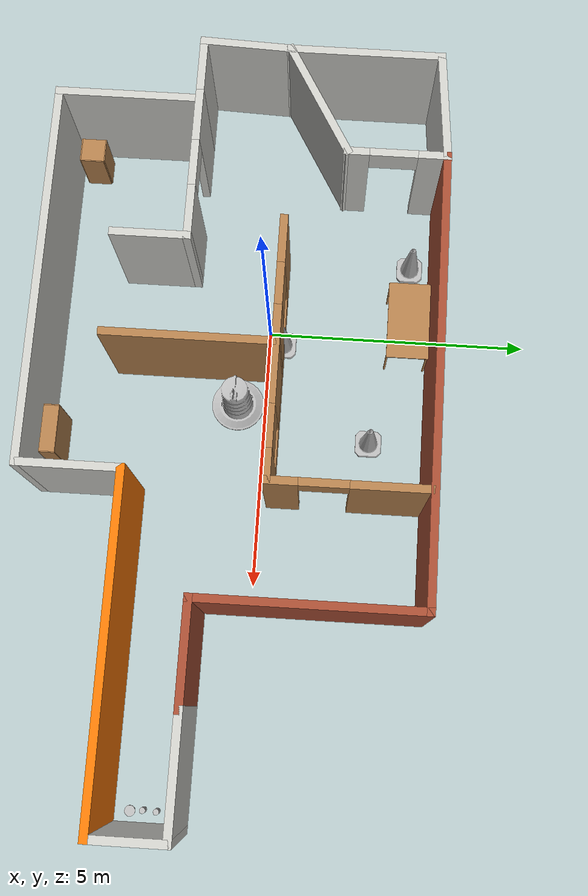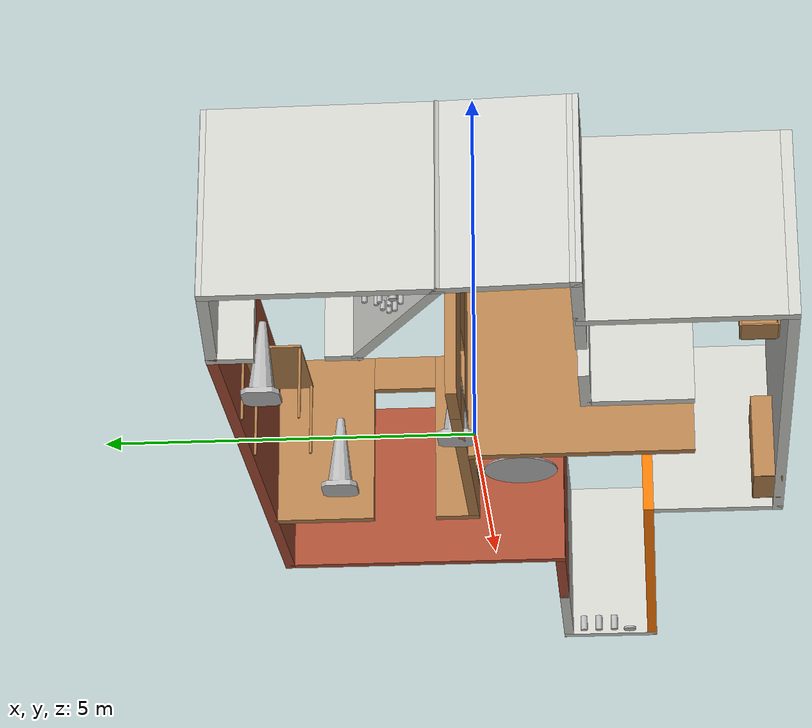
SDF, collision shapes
<?xml version='1.0'?>
<sdf version='1.7'>
  <model name='World'>
    <model name='Construction Barrel'>
      <link name='link'>
        <inertial>
          <pose>0 0 0.4 0 -0 0</pose>
          <mass>500</mass>
          <inertia>
            <ixx>51.2096</ixx>
            <iyy>51.2096</iyy>
            <izz>25</izz>
            <ixy>0</ixy>
            <ixz>0</ixz>
            <iyz>0</iyz>
          </inertia>
        </inertial>
        <collision name='collision'>
          <geometry>
            <mesh>
              <uri>model://construction_barrel/meshes/construction_barrel.dae</uri>
            </mesh>
          </geometry>
        </collision>
        <visual name='visual'>
          <geometry>
            <mesh>
              <uri>model://construction_barrel/meshes/construction_barrel.dae</uri>
            </mesh>
          </geometry>
        </visual>
      </link>
      <pose>1.4823 -0.546528 0 0 -0 0</pose>
    </model>
    <model name='Construction Cone'>
      <link name='link'>
        <collision name='collision'>
          <geometry>
            <mesh>
              <scale>10 10 10</scale>
              <uri>model://construction_cone/meshes/construction_cone.dae</uri>
            </mesh>
          </geometry>
        </collision>
        <visual name='visual'>
          <geometry>
            <mesh>
              <scale>10 10 10</scale>
              <uri>model://construction_cone/meshes/construction_cone.dae</uri>
            </mesh>
          </geometry>
        </visual>
      </link>
      <pose>2.12523 2.04096 0 0 -0 0</pose>
    </model>
    <model name='Construction Cone_0'>
      <link name='link'>
        <collision name='collision'>
          <geometry>
            <mesh>
              <scale>10 10 10</scale>
              <uri>model://construction_cone/meshes/construction_cone.dae</uri>
            </mesh>
          </geometry>
        </collision>
        <visual name='visual'>
          <geometry>
            <mesh>
              <scale>10 10 10</scale>
              <uri>model://construction_cone/meshes/construction_cone.dae</uri>
            </mesh>
          </geometry>
        </visual>
      </link>
      <pose>-1.51505 2.69302 0 0 -0 0</pose>
    </model>
    <model name='Construction Cone_1'>
      <link name='link'>
        <collision name='collision'>
          <geometry>
            <mesh>
              <scale>10 10 10</scale>
              <uri>model://construction_cone/meshes/construction_cone.dae</uri>
            </mesh>
          </geometry>
        </collision>
        <visual name='visual'>
          <geometry>
            <mesh>
              <scale>10 10 10</scale>
              <uri>model://construction_cone/meshes/construction_cone.dae</uri>
            </mesh>
          </geometry>
        </visual>
      </link>
      <pose>0.21796 0.261366 0 0 -0 0</pose>
    </model>
    <model name='World'>
      <pose>2.25001 -0.493369 0 0 -0 0</pose>
      <link name='Wall_41'>
        <collision name='Wall_41_Collision'>
          <geometry>
            <box>
              <size>1.5 0.15 2.5</size>
            </box>
          </geometry>
          <pose>0 0 1.25 0 -0 0</pose>
        </collision>
        <visual name='Wall_41_Visual'>
          <pose>0 0 1.25 0 -0 0</pose>
          <geometry>
            <box>
              <size>1.5 0.15 2.5</size>
            </box>
          </geometry>
          <material>
            <script>
              <uri>file://media/materials/scripts/gazebo.material</uri>
              <name>Gazebo/CeilingTiled</name>
            </script>
            <ambient>1 1 1 1</ambient>
          </material>
          <meta>
            <layer>0</layer>
          </meta>
        </visual>
        <pose>-3.25027 -1.70266 0 0 -0 1.5708</pose>
      </link>
      <link name='Wall_42'>
        <pose>-4.67527 -1.02766 0 0 -0 3.14159</pose>
        <visual name='Wall_42_Visual_0'>
          <pose>-0.963915 0 1.25 0 -0 0</pose>
          <geometry>
            <box>
              <size>1.07217 0.15 2.5</size>
            </box>
          </geometry>
          <material>
            <script>
              <uri>file://media/materials/scripts/gazebo.material</uri>
              <name>Gazebo/CeilingTiled</name>
            </script>
            <ambient>0.388235 0.270588 0.172549 1</ambient>
          </material>
          <meta>
            <layer>0</layer>
          </meta>
        </visual>
        <collision name='Wall_42_Collision_0'>
          <geometry>
            <box>
              <size>1.07217 0.15 2.5</size>
            </box>
          </geometry>
          <pose>-0.963915 0 1.25 0 -0 0</pose>
        </collision>
        <visual name='Wall_42_Visual_1'>
          <pose>0.986085 0 1.25 0 -0 0</pose>
          <geometry>
            <box>
              <size>1.02783 0.15 2.5</size>
            </box>
          </geometry>
          <material>
            <script>
              <uri>file://media/materials/scripts/gazebo.material</uri>
              <name>Gazebo/CeilingTiled</name>
            </script>
            <ambient>0.388235 0.270588 0.172549 1</ambient>
          </material>
          <meta>
            <layer>0</layer>
          </meta>
        </visual>
        <collision name='Wall_42_Collision_1'>
          <geometry>
            <box>
              <size>1.02783 0.15 2.5</size>
            </box>
          </geometry>
          <pose>0.986085 0 1.25 0 -0 0</pose>
        </collision>
        <visual name='Wall_42_Visual_2'>
          <pose>0.02217 0 2.25 0 -0 0</pose>
          <geometry>
            <box>
              <size>0.9 0.15 0.5</size>
            </box>
          </geometry>
          <material>
            <script>
              <uri>file://media/materials/scripts/gazebo.material</uri>
              <name>Gazebo/CeilingTiled</name>
            </script>
            <ambient>0.388235 0.270588 0.172549 1</ambient>
          </material>
          <meta>
            <layer>0</layer>
          </meta>
        </visual>
        <collision name='Wall_42_Collision_2'>
          <geometry>
            <box>
              <size>0.9 0.15 0.5</size>
            </box>
          </geometry>
          <pose>0.02217 0 2.25 0 -0 0</pose>
        </collision>
      </link>
      <link name='Wall_43'>
        <collision name='Wall_43_Collision'>
          <geometry>
            <box>
              <size>1.25 0.15 2.5</size>
            </box>
          </geometry>
          <pose>0 0 1.25 0 -0 0</pose>
        </collision>
        <visual name='Wall_43_Visual'>
          <pose>0 0 1.25 0 -0 0</pose>
          <geometry>
            <box>
              <size>1.25 0.15 2.5</size>
            </box>
          </geometry>
          <material>
            <script>
              <uri>file://media/materials/scripts/gazebo.material</uri>
              <name>Gazebo/CeilingTiled</name>
            </script>
            <ambient>1 1 1 1</ambient>
          </material>
          <meta>
            <layer>0</layer>
          </meta>
        </visual>
        <pose>-6.65027 -1.02766 0 0 -0 3.14159</pose>
      </link>
      <link name='Wall_44'>
        <collision name='Wall_44_Collision'>
          <geometry>
            <box>
              <size>1.80101 0.15 2.5</size>
            </box>
          </geometry>
          <pose>0 0 1.25 0 -0 0</pose>
        </collision>
        <visual name='Wall_44_Visual'>
          <pose>0 0 1.25 0 -0 0</pose>
          <geometry>
            <box>
              <size>1.80101 0.15 2.5</size>
            </box>
          </geometry>
          <material>
            <script>
              <uri>file://media/materials/scripts/gazebo.material</uri>
              <name>Gazebo/CeilingTiled</name>
            </script>
            <ambient>1 1 1 1</ambient>
          </material>
          <meta>
            <layer>0</layer>
          </meta>
        </visual>
        <pose>-7.16606 -0.202869 0 0 -0 1.52934</pose>
      </link>
      <link name='Wall_47'>
        <collision name='Wall_47_Collision'>
          <geometry>
            <box>
              <size>2.5 0.15 2.5</size>
            </box>
          </geometry>
          <pose>0 0 1.25 0 -0 0</pose>
        </collision>
        <visual name='Wall_47_Visual'>
          <pose>0 0 1.25 0 -0 0</pose>
          <geometry>
            <box>
              <size>2.5 0.15 2.5</size>
            </box>
          </geometry>
          <material>
            <script>
              <uri>file://media/materials/scripts/gazebo.material</uri>
              <name>Gazebo/CeilingTiled</name>
            </script>
            <ambient>1 1 1 1</ambient>
          </material>
          <meta>
            <layer>0</layer>
          </meta>
        </visual>
        <pose>-6.11427 1.20942 0 0 -0 0.523599</pose>
      </link>
      <link name='Wall_50'>
        <pose>-5.09669 2.72193 0 0 -0 1.5708</pose>
        <visual name='Wall_50_Visual_0'>
          <pose>-0.758464 0 1.25 0 -0 0</pose>
          <geometry>
            <box>
              <size>0.483072 0.15 2.5</size>
            </box>
          </geometry>
          <material>
            <script>
              <uri>file://media/materials/scripts/gazebo.material</uri>
              <name>Gazebo/CeilingTiled</name>
            </script>
            <ambient>1 1 1 1</ambient>
          </material>
          <meta>
            <layer>0</layer>
          </meta>
        </visual>
        <collision name='Wall_50_Collision_0'>
          <geometry>
            <box>
              <size>0.483072 0.15 2.5</size>
            </box>
          </geometry>
          <pose>-0.758464 0 1.25 0 -0 0</pose>
        </collision>
        <visual name='Wall_50_Visual_1'>
          <pose>0.691536 0 1.25 0 -0 0</pose>
          <geometry>
            <box>
              <size>0.616928 0.15 2.5</size>
            </box>
          </geometry>
          <material>
            <script>
              <uri>file://media/materials/scripts/gazebo.material</uri>
              <name>Gazebo/CeilingTiled</name>
            </script>
            <ambient>1 1 1 1</ambient>
          </material>
          <meta>
            <layer>0</layer>
          </meta>
        </visual>
        <collision name='Wall_50_Collision_1'>
          <geometry>
            <box>
              <size>0.616928 0.15 2.5</size>
            </box>
          </geometry>
          <pose>0.691536 0 1.25 0 -0 0</pose>
        </collision>
        <visual name='Wall_50_Visual_2'>
          <pose>-0.066928 0 2.25 0 -0 0</pose>
          <geometry>
            <box>
              <size>0.9 0.15 0.5</size>
            </box>
          </geometry>
          <material>
            <script>
              <uri>file://media/materials/scripts/gazebo.material</uri>
              <name>Gazebo/CeilingTiled</name>
            </script>
            <ambient>1 1 1 1</ambient>
          </material>
          <meta>
            <layer>0</layer>
          </meta>
        </visual>
        <collision name='Wall_50_Collision_2'>
          <geometry>
            <box>
              <size>0.9 0.15 0.5</size>
            </box>
          </geometry>
          <pose>-0.066928 0 2.25 0 -0 0</pose>
        </collision>
      </link>
      <link name='Wall_51'>
        <collision name='Wall_51_Collision'>
          <geometry>
            <box>
              <size>8.5 0.15 2.5</size>
            </box>
          </geometry>
          <pose>0 0 1.25 0 -0 0</pose>
        </collision>
        <visual name='Wall_51_Visual'>
          <pose>0 0 1.25 0 -0 0</pose>
          <geometry>
            <box>
              <size>8.5 0.15 2.5</size>
            </box>
          </geometry>
          <material>
            <script>
              <uri>file://media/materials/scripts/gazebo.material</uri>
              <name>Gazebo/Bricks</name>
            </script>
            <ambient>1 1 1 1</ambient>
          </material>
          <meta>
            <layer>0</layer>
          </meta>
        </visual>
        <pose>-0.921689 3.64692 0 0 -0 0</pose>
      </link>
      <link name='Wall_52'>
        <collision name='Wall_52_Collision'>
          <geometry>
            <box>
              <size>4.25 0.15 2.5</size>
            </box>
          </geometry>
          <pose>0 0 1.25 0 -0 0</pose>
        </collision>
        <visual name='Wall_52_Visual'>
          <pose>0 0 1.25 0 -0 0</pose>
          <geometry>
            <box>
              <size>4.25 0.15 2.5</size>
            </box>
          </geometry>
          <material>
            <script>
              <uri>file://media/materials/scripts/gazebo.material</uri>
              <name>Gazebo/Bricks</name>
            </script>
            <ambient>1 1 1 1</ambient>
          </material>
          <meta>
            <layer>0</layer>
          </meta>
        </visual>
        <pose>3.25331 1.59692 0 0 -0 -1.5708</pose>
      </link>
      <link name='Wall_53'>
        <collision name='Wall_53_Collision'>
          <geometry>
            <box>
              <size>2 0.15 2.5</size>
            </box>
          </geometry>
          <pose>0 0 1.25 0 -0 0</pose>
        </collision>
        <visual name='Wall_53_Visual'>
          <pose>0 0 1.25 0 -0 0</pose>
          <geometry>
            <box>
              <size>2 0.15 2.5</size>
            </box>
          </geometry>
          <material>
            <script>
              <uri>file://media/materials/scripts/gazebo.material</uri>
              <name>Gazebo/Bricks</name>
            </script>
            <ambient>0.760784 0.662745 0.627451 1</ambient>
          </material>
          <meta>
            <layer>0</layer>
          </meta>
        </visual>
        <pose>4.17831 -0.453075 0 0 -0 0</pose>
      </link>
      <link name='Wall_54'>
        <collision name='Wall_54_Collision'>
          <geometry>
            <box>
              <size>2.25 0.15 2.5</size>
            </box>
          </geometry>
          <pose>0 0 1.25 0 -0 0</pose>
        </collision>
        <visual name='Wall_54_Visual'>
          <pose>0 0 1.25 0 -0 0</pose>
          <geometry>
            <box>
              <size>2.25 0.15 2.5</size>
            </box>
          </geometry>
          <material>
            <script>
              <uri>file://media/materials/scripts/gazebo.material</uri>
              <name>Gazebo/CeilingTiled</name>
            </script>
            <ambient>0.435294 0.796078 0.67451 1</ambient>
          </material>
          <meta>
            <layer>0</layer>
          </meta>
        </visual>
        <pose>6.15331 -0.453075 0 0 -0 0</pose>
      </link>
      <link name='Wall_55'>
        <collision name='Wall_55_Collision'>
          <geometry>
            <box>
              <size>1.5 0.15 2.5</size>
            </box>
          </geometry>
          <pose>0 0 1.25 0 -0 0</pose>
        </collision>
        <visual name='Wall_55_Visual'>
          <pose>0 0 1.25 0 -0 0</pose>
          <geometry>
            <box>
              <size>1.5 0.15 2.5</size>
            </box>
          </geometry>
          <material>
            <script>
              <uri>file://media/materials/scripts/gazebo.material</uri>
              <name>Gazebo/CeilingTiled</name>
            </script>
            <ambient>1 1 1 1</ambient>
          </material>
          <meta>
            <layer>0</layer>
          </meta>
        </visual>
        <pose>7.20331 -1.12807 0 0 -0 -1.5708</pose>
      </link>
      <link name='Wall_57'>
        <collision name='Wall_57_Collision'>
          <geometry>
            <box>
              <size>6.25 0.15 2.5</size>
            </box>
          </geometry>
          <pose>0 0 1.25 0 -0 0</pose>
        </collision>
        <visual name='Wall_57_Visual'>
          <pose>0 0 1.25 0 -0 0</pose>
          <geometry>
            <box>
              <size>6.25 0.15 2.5</size>
            </box>
          </geometry>
          <material>
            <script>
              <uri>file://media/materials/scripts/gazebo.material</uri>
              <name>Gazebo/Grey</name>
            </script>
            <ambient>0.996078 0.47451 0.0196078 1</ambient>
          </material>
          <meta>
            <layer>0</layer>
          </meta>
        </visual>
        <pose>4.15331 -1.80307 0 0 -0 3.14159</pose>
      </link>
      <link name='Wall_58'>
        <collision name='Wall_58_Collision'>
          <geometry>
            <box>
              <size>2 0.15 2.5</size>
            </box>
          </geometry>
          <pose>0 0 1.25 0 -0 0</pose>
        </collision>
        <visual name='Wall_58_Visual'>
          <pose>0 0 1.25 0 -0 0</pose>
          <geometry>
            <box>
              <size>2 0.15 2.5</size>
            </box>
          </geometry>
          <material>
            <script>
              <uri>file://media/materials/scripts/gazebo.material</uri>
              <name>Gazebo/CeilingTiled</name>
            </script>
            <ambient>1 1 1 1</ambient>
          </material>
          <meta>
            <layer>0</layer>
          </meta>
        </visual>
        <pose>1.10331 -2.72808 0 0 -0 -1.5708</pose>
      </link>
      <link name='Wall_59'>
        <collision name='Wall_59_Collision'>
          <geometry>
            <box>
              <size>7.25 0.15 2.5</size>
            </box>
          </geometry>
          <pose>0 0 1.25 0 -0 0</pose>
        </collision>
        <visual name='Wall_59_Visual'>
          <pose>0 0 1.25 0 -0 0</pose>
          <geometry>
            <box>
              <size>7.25 0.15 2.5</size>
            </box>
          </geometry>
          <material>
            <script>
              <uri>file://media/materials/scripts/gazebo.material</uri>
              <name>Gazebo/CeilingTiled</name>
            </script>
            <ambient>1 1 1 1</ambient>
          </material>
          <meta>
            <layer>0</layer>
          </meta>
        </visual>
        <pose>-2.44669 -3.65307 0 0 -0 3.14159</pose>
      </link>
      <link name='Wall_60'>
        <collision name='Wall_60_Collision'>
          <geometry>
            <box>
              <size>2.75 0.15 2.5</size>
            </box>
          </geometry>
          <pose>0 0 1.25 0 -0 0</pose>
        </collision>
        <visual name='Wall_60_Visual'>
          <pose>0 0 1.25 0 -0 0</pose>
          <geometry>
            <box>
              <size>2.75 0.15 2.5</size>
            </box>
          </geometry>
          <material>
            <script>
              <uri>file://media/materials/scripts/gazebo.material</uri>
              <name>Gazebo/CeilingTiled</name>
            </script>
            <ambient>1 1 1 1</ambient>
          </material>
          <meta>
            <layer>0</layer>
          </meta>
        </visual>
        <pose>-5.99669 -2.35308 0 0 -0 1.5708</pose>
      </link>
      <link name='Wall_62'>
        <pose>-1.26157 0.713054 0 0 -0 -5.3e-05</pose>
        <visual name='Wall_62_Visual_0'>
          <pose>-2.03741 0 1.25 0 -0 0</pose>
          <geometry>
            <box>
              <size>0.925179 0.15 2.5</size>
            </box>
          </geometry>
          <material>
            <script>
              <uri>file://media/materials/scripts/gazebo.material</uri>
              <name>Gazebo/Wood</name>
            </script>
            <ambient>0.647059 0.113725 0.176471 1</ambient>
          </material>
          <meta>
            <layer>0</layer>
          </meta>
        </visual>
        <collision name='Wall_62_Collision_0'>
          <geometry>
            <box>
              <size>0.925179 0.15 2.5</size>
            </box>
          </geometry>
          <pose>-2.03741 0 1.25 0 -0 0</pose>
        </collision>
        <visual name='Wall_62_Visual_1'>
          <pose>0.462589 0 0.25 0 -0 0</pose>
          <geometry>
            <box>
              <size>4.07482 0.15 0.5</size>
            </box>
          </geometry>
          <material>
            <script>
              <uri>file://media/materials/scripts/gazebo.material</uri>
              <name>Gazebo/Wood</name>
            </script>
            <ambient>0.647059 0.113725 0.176471 1</ambient>
          </material>
          <meta>
            <layer>0</layer>
          </meta>
        </visual>
        <collision name='Wall_62_Collision_1'>
          <geometry>
            <box>
              <size>4.07482 0.15 0.5</size>
            </box>
          </geometry>
          <pose>0.462589 0 0.25 0 -0 0</pose>
        </collision>
        <visual name='Wall_62_Visual_2'>
          <pose>0.141923 0 1.5 0 -0 0</pose>
          <geometry>
            <box>
              <size>1.83349 0.15 2</size>
            </box>
          </geometry>
          <material>
            <script>
              <uri>file://media/materials/scripts/gazebo.material</uri>
              <name>Gazebo/Wood</name>
            </script>
            <ambient>0.647059 0.113725 0.176471 1</ambient>
          </material>
          <meta>
            <layer>0</layer>
          </meta>
        </visual>
        <collision name='Wall_62_Collision_2'>
          <geometry>
            <box>
              <size>1.83349 0.15 2</size>
            </box>
          </geometry>
          <pose>0.141923 0 1.5 0 -0 0</pose>
        </collision>
        <visual name='Wall_62_Visual_3'>
          <pose>2.17933 0 1.5 0 -0 0</pose>
          <geometry>
            <box>
              <size>0.641333 0.15 2</size>
            </box>
          </geometry>
          <material>
            <script>
              <uri>file://media/materials/scripts/gazebo.material</uri>
              <name>Gazebo/Wood</name>
            </script>
            <ambient>0.647059 0.113725 0.176471 1</ambient>
          </material>
          <meta>
            <layer>0</layer>
          </meta>
        </visual>
        <collision name='Wall_62_Collision_3'>
          <geometry>
            <box>
              <size>0.641333 0.15 2</size>
            </box>
          </geometry>
          <pose>2.17933 0 1.5 0 -0 0</pose>
        </collision>
        <visual name='Wall_62_Visual_4'>
          <pose>-1.17482 0 1.9 0 -0 0</pose>
          <geometry>
            <box>
              <size>0.8 0.15 1.2</size>
            </box>
          </geometry>
          <material>
            <script>
              <uri>file://media/materials/scripts/gazebo.material</uri>
              <name>Gazebo/Wood</name>
            </script>
            <ambient>0.647059 0.113725 0.176471 1</ambient>
          </material>
          <meta>
            <layer>0</layer>
          </meta>
        </visual>
        <collision name='Wall_62_Collision_4'>
          <geometry>
            <box>
              <size>0.8 0.15 1.2</size>
            </box>
          </geometry>
          <pose>-1.17482 0 1.9 0 -0 0</pose>
        </collision>
        <visual name='Wall_62_Visual_5'>
          <pose>1.45867 0 1.9 0 -0 0</pose>
          <geometry>
            <box>
              <size>0.8 0.15 1.2</size>
            </box>
          </geometry>
          <material>
            <script>
              <uri>file://media/materials/scripts/gazebo.material</uri>
              <name>Gazebo/Wood</name>
            </script>
            <ambient>0.647059 0.113725 0.176471 1</ambient>
          </material>
          <meta>
            <layer>0</layer>
          </meta>
        </visual>
        <collision name='Wall_62_Collision_5'>
          <geometry>
            <box>
              <size>0.8 0.15 1.2</size>
            </box>
          </geometry>
          <pose>1.45867 0 1.9 0 -0 0</pose>
        </collision>
      </link>
      <link name='Wall_64'>
        <collision name='Wall_64_Collision'>
          <geometry>
            <box>
              <size>3.25 0.15 2.5</size>
            </box>
          </geometry>
          <pose>0 0 1.25 0 -0 0</pose>
        </collision>
        <visual name='Wall_64_Visual'>
          <pose>0 0 1.25 0 -0 0</pose>
          <geometry>
            <box>
              <size>3.25 0.15 2.5</size>
            </box>
          </geometry>
          <material>
            <script>
              <uri>file://media/materials/scripts/gazebo.material</uri>
              <name>Gazebo/Wood</name>
            </script>
            <ambient>1 1 1 1</ambient>
          </material>
          <meta>
            <layer>0</layer>
          </meta>
        </visual>
        <pose>-1.34581 -0.836817 0 0 -0 -1.5708</pose>
      </link>
      <link name='Wall_66'>
        <collision name='Wall_66_Collision'>
          <geometry>
            <box>
              <size>3 0.15 2.5</size>
            </box>
          </geometry>
          <pose>0 0 1.25 0 -0 0</pose>
        </collision>
        <visual name='Wall_66_Visual'>
          <pose>0 0 1.25 0 -0 0</pose>
          <geometry>
            <box>
              <size>3 0.15 2.5</size>
            </box>
          </geometry>
          <material>
            <script>
              <uri>file://media/materials/scripts/gazebo.material</uri>
              <name>Gazebo/CeilingTiled</name>
            </script>
            <ambient>1 1 1 1</ambient>
          </material>
          <meta>
            <layer>0</layer>
          </meta>
        </visual>
        <pose>-7.13185 2.04692 0 0 -0 1.5708</pose>
      </link>
      <link name='Wall_67'>
        <collision name='Wall_67_Collision'>
          <geometry>
            <box>
              <size>2.19267 0.15 2.5</size>
            </box>
          </geometry>
          <pose>0 0 1.25 0 -0 0</pose>
        </collision>
        <visual name='Wall_67_Visual'>
          <pose>0 0 1.25 0 -0 0</pose>
          <geometry>
            <box>
              <size>2.19267 0.15 2.5</size>
            </box>
          </geometry>
          <material>
            <script>
              <uri>file://media/materials/scripts/gazebo.material</uri>
              <name>Gazebo/CeilingTiled</name>
            </script>
            <ambient>1 1 1 1</ambient>
          </material>
          <meta>
            <layer>0</layer>
          </meta>
        </visual>
        <pose>-6.11427 3.55943 0 0 -0 0.085777</pose>
      </link>
      <link name='Wall_69'>
        <pose>1.1635 2.13793 0 0 -0 1.5708</pose>
        <visual name='Wall_69_Visual_0'>
          <pose>-1.18427 0 1.25 0 -0 0</pose>
          <geometry>
            <box>
              <size>0.631449 0.15 2.5</size>
            </box>
          </geometry>
          <material>
            <script>
              <uri>file://media/materials/scripts/gazebo.material</uri>
              <name>Gazebo/Wood</name>
            </script>
            <ambient>1 1 1 1</ambient>
          </material>
          <meta>
            <layer>0</layer>
          </meta>
        </visual>
        <collision name='Wall_69_Collision_0'>
          <geometry>
            <box>
              <size>0.631449 0.15 2.5</size>
            </box>
          </geometry>
          <pose>-1.18427 0 1.25 0 -0 0</pose>
        </collision>
        <visual name='Wall_69_Visual_1'>
          <pose>0.765725 0 1.25 0 -0 0</pose>
          <geometry>
            <box>
              <size>1.46855 0.15 2.5</size>
            </box>
          </geometry>
          <material>
            <script>
              <uri>file://media/materials/scripts/gazebo.material</uri>
              <name>Gazebo/Wood</name>
            </script>
            <ambient>1 1 1 1</ambient>
          </material>
          <meta>
            <layer>0</layer>
          </meta>
        </visual>
        <collision name='Wall_69_Collision_1'>
          <geometry>
            <box>
              <size>1.46855 0.15 2.5</size>
            </box>
          </geometry>
          <pose>0.765725 0 1.25 0 -0 0</pose>
        </collision>
        <visual name='Wall_69_Visual_2'>
          <pose>-0.418551 0 2.25 0 -0 0</pose>
          <geometry>
            <box>
              <size>0.9 0.15 0.5</size>
            </box>
          </geometry>
          <material>
            <script>
              <uri>file://media/materials/scripts/gazebo.material</uri>
              <name>Gazebo/Wood</name>
            </script>
            <ambient>1 1 1 1</ambient>
          </material>
          <meta>
            <layer>0</layer>
          </meta>
        </visual>
        <collision name='Wall_69_Collision_2'>
          <geometry>
            <box>
              <size>0.9 0.15 0.5</size>
            </box>
          </geometry>
          <pose>-0.418551 0 2.25 0 -0 0</pose>
        </collision>
      </link>
      <static>1</static>
    </model>
    <model name='beer'>
      <link name='link'>
        <pose>0 0 0.115 0 -0 0</pose>
        <inertial>
          <mass>0.39</mass>
          <inertia>
            <ixx>0.00058</ixx>
            <ixy>0</ixy>
            <ixz>0</ixz>
            <iyy>0.00058</iyy>
            <iyz>0</iyz>
            <izz>0.00019</izz>
          </inertia>
        </inertial>
        <collision name='collision'>
          <geometry>
            <cylinder>
              <radius>0.055</radius>
              <length>0.23</length>
            </cylinder>
          </geometry>
        </collision>
        <visual name='visual'>
          <geometry>
            <cylinder>
              <radius>0.055</radius>
              <length>0.23</length>
            </cylinder>
          </geometry>
          <material>
            <script>
              <uri>model://beer/materials/scripts</uri>
              <uri>model://beer/materials/textures</uri>
              <name>Beer/Diffuse</name>
            </script>
          </material>
        </visual>
      </link>
      <pose>9.15485 -1.68905 0 0 -0 0</pose>
    </model>
    <model name='beer_0'>
      <link name='link'>
        <pose>0 0 0.115 0 -0 0</pose>
        <inertial>
          <mass>0.39</mass>
          <inertia>
            <ixx>0.00058</ixx>
            <ixy>0</ixy>
            <ixz>0</ixz>
            <iyy>0.00058</iyy>
            <iyz>0</iyz>
            <izz>0.00019</izz>
          </inertia>
        </inertial>
        <collision name='collision'>
          <geometry>
            <cylinder>
              <radius>0.055</radius>
              <length>0.23</length>
            </cylinder>
          </geometry>
        </collision>
        <visual name='visual'>
          <geometry>
            <cylinder>
              <radius>0.055</radius>
              <length>0.23</length>
            </cylinder>
          </geometry>
          <material>
            <script>
              <uri>model://beer/materials/scripts</uri>
              <uri>model://beer/materials/textures</uri>
              <name>Beer/Diffuse</name>
            </script>
          </material>
        </visual>
      </link>
      <pose>9.16568 -1.43968 0 0 -0 0</pose>
    </model>
    <model name='beer_1'>
      <link name='link'>
        <pose>0 0 0.115 0 -0 0</pose>
        <inertial>
          <mass>0.39</mass>
          <inertia>
            <ixx>0.00058</ixx>
            <ixy>0</ixy>
            <ixz>0</ixz>
            <iyy>0.00058</iyy>
            <iyz>0</iyz>
            <izz>0.00019</izz>
          </inertia>
        </inertial>
        <collision name='collision'>
          <geometry>
            <cylinder>
              <radius>0.055</radius>
              <length>0.23</length>
            </cylinder>
          </geometry>
        </collision>
        <visual name='visual'>
          <geometry>
            <cylinder>
              <radius>0.055</radius>
              <length>0.23</length>
            </cylinder>
          </geometry>
          <material>
            <script>
              <uri>model://beer/materials/scripts</uri>
              <uri>model://beer/materials/textures</uri>
              <name>Beer/Diffuse</name>
            </script>
          </material>
        </visual>
      </link>
      <pose>9.17128 -1.19867 0 0 -0 0</pose>
    </model>
    <model name='beer_2'>
      <link name='link'>
        <pose>0 0 0.115 0 -0 0</pose>
        <inertial>
          <mass>0.39</mass>
          <inertia>
            <ixx>0.00058</ixx>
            <ixy>0</ixy>
            <ixz>0</ixz>
            <iyy>0.00058</iyy>
            <iyz>0</iyz>
            <izz>0.00019</izz>
          </inertia>
        </inertial>
        <collision name='collision'>
          <geometry>
            <cylinder>
              <radius>0.055</radius>
              <length>0.23</length>
            </cylinder>
          </geometry>
        </collision>
        <visual name='visual'>
          <geometry>
            <cylinder>
              <radius>0.055</radius>
              <length>0.23</length>
            </cylinder>
          </geometry>
          <material>
            <script>
              <uri>model://beer/materials/scripts</uri>
              <uri>model://beer/materials/textures</uri>
              <name>Beer/Diffuse</name>
            </script>
          </material>
        </visual>
      </link>
      <pose>-4.66971 0.690219 0 0 -0 0</pose>
    </model>
    <model name='bookshelf'>
      <static>1</static>
      <link name='link'>
        <inertial>
          <mass>1</mass>
        </inertial>
        <collision name='back'>
          <pose>0 0.005 0.6 0 -0 0</pose>
          <geometry>
            <box>
              <size>0.9 0.01 1.2</size>
            </box>
          </geometry>
        </collision>
        <visual name='visual1'>
          <pose>0 0.005 0.6 0 -0 0</pose>
          <geometry>
            <box>
              <size>0.9 0.01 1.2</size>
            </box>
          </geometry>
          <material>
            <script>
              <uri>file://media/materials/scripts/gazebo.material</uri>
              <name>Gazebo/Wood</name>
            </script>
          </material>
        </visual>
        <collision name='left_side'>
          <pose>0.45 -0.195 0.6 0 -0 0</pose>
          <geometry>
            <box>
              <size>0.02 0.4 1.2</size>
            </box>
          </geometry>
        </collision>
        <visual name='visual2'>
          <pose>0.45 -0.195 0.6 0 -0 0</pose>
          <geometry>
            <box>
              <size>0.02 0.4 1.2</size>
            </box>
          </geometry>
          <material>
            <script>
              <uri>file://media/materials/scripts/gazebo.material</uri>
              <name>Gazebo/Wood</name>
            </script>
          </material>
        </visual>
        <collision name='right_side'>
          <pose>-0.45 -0.195 0.6 0 -0 0</pose>
          <geometry>
            <box>
              <size>0.02 0.4 1.2</size>
            </box>
          </geometry>
        </collision>
        <visual name='visual3'>
          <pose>-0.45 -0.195 0.6 0 -0 0</pose>
          <geometry>
            <box>
              <size>0.02 0.4 1.2</size>
            </box>
          </geometry>
          <material>
            <script>
              <uri>file://media/materials/scripts/gazebo.material</uri>
              <name>Gazebo/Wood</name>
            </script>
          </material>
        </visual>
        <collision name='bottom'>
          <pose>0 -0.195 0.03 0 -0 0</pose>
          <geometry>
            <box>
              <size>0.88 0.4 0.06</size>
            </box>
          </geometry>
        </collision>
        <visual name='visual4'>
          <pose>0 -0.195 0.03 0 -0 0</pose>
          <geometry>
            <box>
              <size>0.88 0.4 0.06</size>
            </box>
          </geometry>
          <material>
            <script>
              <uri>file://media/materials/scripts/gazebo.material</uri>
              <name>Gazebo/Wood</name>
            </script>
          </material>
        </visual>
        <collision name='top'>
          <pose>0 -0.195 1.19 0 -0 0</pose>
          <geometry>
            <box>
              <size>0.88 0.4 0.02</size>
            </box>
          </geometry>
        </collision>
        <visual name='visual5'>
          <pose>0 -0.195 1.19 0 -0 0</pose>
          <geometry>
            <box>
              <size>0.88 0.4 0.02</size>
            </box>
          </geometry>
          <material>
            <script>
              <uri>file://media/materials/scripts/gazebo.material</uri>
              <name>Gazebo/Wood</name>
            </script>
          </material>
        </visual>
        <collision name='low_shelf'>
          <pose>0 -0.195 0.43 0 -0 0</pose>
          <geometry>
            <box>
              <size>0.88 0.4 0.02</size>
            </box>
          </geometry>
        </collision>
        <visual name='visual6'>
          <pose>0 -0.195 0.43 0 -0 0</pose>
          <geometry>
            <box>
              <size>0.88 0.4 0.02</size>
            </box>
          </geometry>
          <material>
            <script>
              <uri>file://media/materials/scripts/gazebo.material</uri>
              <name>Gazebo/Wood</name>
            </script>
          </material>
        </visual>
        <collision name='high_shelf'>
          <pose>0 -0.195 0.8 0 -0 0</pose>
          <geometry>
            <box>
              <size>0.88 0.4 0.02</size>
            </box>
          </geometry>
        </collision>
        <visual name='visual7'>
          <pose>0 -0.195 0.8 0 -0 0</pose>
          <geometry>
            <box>
              <size>0.88 0.4 0.02</size>
            </box>
          </geometry>
          <material>
            <script>
              <uri>file://media/materials/scripts/gazebo.material</uri>
              <name>Gazebo/Wood</name>
            </script>
          </material>
        </visual>
      </link>
      <pose>2.43861 -3.78259 0 0 -0 0</pose>
    </model>
    <model name='bowl'>
      <link name='link'>
        <inertial>
          <pose>0 0 0.0175 0 -0 0</pose>
          <mass>0.1</mass>
          <inertia>
            <ixx>0.000250308</ixx>
            <ixy>0</ixy>
            <ixz>0</ixz>
            <iyy>0.000250308</iyy>
            <iyz>0</iyz>
            <izz>0.0004802</izz>
          </inertia>
        </inertial>
        <collision name='collision'>
          <pose>0 0 0.0175 0 -0 0</pose>
          <geometry>
            <cylinder>
              <radius>0.098</radius>
              <length>0.035</length>
            </cylinder>
          </geometry>
        </collision>
        <visual name='visual'>
          <geometry>
            <mesh>
              <uri>model://bowl/meshes/bowl.dae</uri>
            </mesh>
          </geometry>
        </visual>
      </link>
      <pose>9.18929 -1.93996 0 0 -0 0</pose>
    </model>
    <model name='cabinet'>
      <static>1</static>
      <link name='cabinet_bottom_plate'>
        <inertial>
          <pose>0 0 -1 0 -0 0</pose>
          <inertia>
            <ixx>2.05</ixx>
            <ixy>0</ixy>
            <ixz>0</ixz>
            <iyy>2.05</iyy>
            <iyz>0</iyz>
            <izz>2.05</izz>
          </inertia>
          <mass>25</mass>
        </inertial>
        <collision name='cabinet_bottom_plate_geom'>
          <pose>0 0 0.01 0 -0 0</pose>
          <geometry>
            <box>
              <size>0.45 0.45 0.02</size>
            </box>
          </geometry>
        </collision>
        <visual name='cabinet_bottom_plate_geom_visual'>
          <pose>0 0 0.01 0 -0 0</pose>
          <geometry>
            <box>
              <size>0.45 0.45 0.02</size>
            </box>
          </geometry>
          <material>
            <script>
              <uri>file://media/materials/scripts/gazebo.material</uri>
              <name>Gazebo/Wood</name>
            </script>
          </material>
        </visual>
        <collision name='cabinet_bottom_plate_geom_cabinet_back_plate'>
          <pose>0.235 0 0.51 0 -0 0</pose>
          <geometry>
            <box>
              <size>0.02 0.45 1.02</size>
            </box>
          </geometry>
        </collision>
        <visual name='cabinet_bottom_plate_geom_cabinet_back_plate_visual'>
          <pose>0.235 0 0.51 0 -0 0</pose>
          <geometry>
            <box>
              <size>0.02 0.45 1.02</size>
            </box>
          </geometry>
          <material>
            <script>
              <uri>file://media/materials/scripts/gazebo.material</uri>
              <name>Gazebo/Wood</name>
            </script>
          </material>
        </visual>
        <collision name='cabinet_bottom_plate_geom_cabinet_left_plate'>
          <pose>0 0.235 0.51 0 -0 0</pose>
          <geometry>
            <box>
              <size>0.45 0.02 1.02</size>
            </box>
          </geometry>
        </collision>
        <visual name='cabinet_bottom_plate_geom_cabinet_left_plate_visual'>
          <pose>0 0.235 0.51 0 -0 0</pose>
          <geometry>
            <box>
              <size>0.45 0.02 1.02</size>
            </box>
          </geometry>
          <material>
            <script>
              <uri>file://media/materials/scripts/gazebo.material</uri>
              <name>Gazebo/Wood</name>
            </script>
          </material>
        </visual>
        <collision name='cabinet_bottom_plate_geom_cabinet_middle_plate'>
          <pose>0 0 0.51 0 -0 0</pose>
          <geometry>
            <box>
              <size>0.45 0.45 0.02</size>
            </box>
          </geometry>
        </collision>
        <visual name='cabinet_bottom_plate_geom_cabinet_middle_plate_visual'>
          <pose>0 0 0.51 0 -0 0</pose>
          <geometry>
            <box>
              <size>0.45 0.45 0.02</size>
            </box>
          </geometry>
          <material>
            <script>
              <uri>file://media/materials/scripts/gazebo.material</uri>
              <name>Gazebo/Wood</name>
            </script>
          </material>
        </visual>
        <collision name='cabinet_bottom_plate_geom_cabinet_right_plate'>
          <pose>0 -0.235 0.51 0 -0 0</pose>
          <geometry>
            <box>
              <size>0.45 0.02 1.02</size>
            </box>
          </geometry>
        </collision>
        <visual name='cabinet_bottom_plate_geom_cabinet_right_plate_visual'>
          <pose>0 -0.235 0.51 0 -0 0</pose>
          <geometry>
            <box>
              <size>0.45 0.02 1.02</size>
            </box>
          </geometry>
          <material>
            <script>
              <uri>file://media/materials/scripts/gazebo.material</uri>
              <name>Gazebo/Wood</name>
            </script>
          </material>
        </visual>
        <collision name='cabinet_bottom_plate_geom_cabinet_top_plate'>
          <pose>0 0 1.01 0 -0 0</pose>
          <geometry>
            <box>
              <size>0.45 0.45 0.02</size>
            </box>
          </geometry>
        </collision>
        <visual name='cabinet_bottom_plate_geom_cabinet_top_plate_visual'>
          <pose>0 0 1.01 0 -0 0</pose>
          <geometry>
            <box>
              <size>0.45 0.45 0.02</size>
            </box>
          </geometry>
          <material>
            <script>
              <uri>file://media/materials/scripts/gazebo.material</uri>
              <name>Gazebo/Wood</name>
            </script>
          </material>
        </visual>
      </link>
      <pose>-3.3017 -3.72882 0 0 -0 0</pose>
    </model>
    <model name='coke_can'>
      <link name='link'>
        <inertial>
          <pose>0 0 0.06 0 -0 0</pose>
          <mass>0.39</mass>
          <inertia>
            <ixx>0.00055575</ixx>
            <ixy>0</ixy>
            <ixz>0</ixz>
            <iyy>0.00055575</iyy>
            <iyz>0</iyz>
            <izz>0.0001755</izz>
          </inertia>
        </inertial>
        <collision name='collision'>
          <pose>0.003937 0.004724 -0.18 0 -0 0</pose>
          <geometry>
            <mesh>
              <uri>model://coke_can/meshes/coke_can.dae</uri>
            </mesh>
          </geometry>
          <surface>
            <friction>
              <ode>
                <mu>1</mu>
                <mu2>1</mu2>
              </ode>
            </friction>
            <contact>
              <ode>
                <kp>1e+07</kp>
                <kd>1</kd>
                <min_depth>0.001</min_depth>
                <max_vel>0.1</max_vel>
              </ode>
            </contact>
          </surface>
        </collision>
        <visual name='visual'>
          <pose>0.003937 0.004724 -0.18 0 -0 0</pose>
          <geometry>
            <mesh>
              <uri>model://coke_can/meshes/coke_can.dae</uri>
            </mesh>
          </geometry>
        </visual>
      </link>
      <pose>-4.57308 0.860018 0 0 -0 0</pose>
    </model>
    <model name='coke_can_0'>
      <link name='link'>
        <inertial>
          <pose>0 0 0.06 0 -0 0</pose>
          <mass>0.39</mass>
          <inertia>
            <ixx>0.00055575</ixx>
            <ixy>0</ixy>
            <ixz>0</ixz>
            <iyy>0.00055575</iyy>
            <iyz>0</iyz>
            <izz>0.0001755</izz>
          </inertia>
        </inertial>
        <collision name='collision'>
          <pose>0.003937 0.004724 -0.18 0 -0 0</pose>
          <geometry>
            <mesh>
              <uri>model://coke_can/meshes/coke_can.dae</uri>
            </mesh>
          </geometry>
          <surface>
            <friction>
              <ode>
                <mu>1</mu>
                <mu2>1</mu2>
              </ode>
            </friction>
            <contact>
              <ode>
                <kp>1e+07</kp>
                <kd>1</kd>
                <min_depth>0.001</min_depth>
                <max_vel>0.1</max_vel>
              </ode>
            </contact>
          </surface>
        </collision>
        <visual name='visual'>
          <pose>0.003937 0.004724 -0.18 0 -0 0</pose>
          <geometry>
            <mesh>
              <uri>model://coke_can/meshes/coke_can.dae</uri>
            </mesh>
          </geometry>
        </visual>
      </link>
      <pose>-4.59278 1.03818 0 0 -0 0</pose>
    </model>
    <model name='coke_can_1'>
      <link name='link'>
        <inertial>
          <pose>0 0 0.06 0 -0 0</pose>
          <mass>0.39</mass>
          <inertia>
            <ixx>0.00055575</ixx>
            <ixy>0</ixy>
            <ixz>0</ixz>
            <iyy>0.00055575</iyy>
            <iyz>0</iyz>
            <izz>0.0001755</izz>
          </inertia>
        </inertial>
        <collision name='collision'>
          <pose>0.003937 0.004724 -0.18 0 -0 0</pose>
          <geometry>
            <mesh>
              <uri>model://coke_can/meshes/coke_can.dae</uri>
            </mesh>
          </geometry>
          <surface>
            <friction>
              <ode>
                <mu>1</mu>
                <mu2>1</mu2>
              </ode>
            </friction>
            <contact>
              <ode>
                <kp>1e+07</kp>
                <kd>1</kd>
                <min_depth>0.001</min_depth>
                <max_vel>0.1</max_vel>
              </ode>
            </contact>
          </surface>
        </collision>
        <visual name='visual'>
          <pose>0.003937 0.004724 -0.18 0 -0 0</pose>
          <geometry>
            <mesh>
              <uri>model://coke_can/meshes/coke_can.dae</uri>
            </mesh>
          </geometry>
        </visual>
      </link>
      <pose>-4.51975 0.60713 0 0 -0 0</pose>
    </model>
    <model name='coke_can_2'>
      <link name='link'>
        <inertial>
          <pose>0 0 0.06 0 -0 0</pose>
          <mass>0.39</mass>
          <inertia>
            <ixx>0.00055575</ixx>
            <ixy>0</ixy>
            <ixz>0</ixz>
            <iyy>0.00055575</iyy>
            <iyz>0</iyz>
            <izz>0.0001755</izz>
          </inertia>
        </inertial>
        <collision name='collision'>
          <pose>0.003937 0.004724 -0.18 0 -0 0</pose>
          <geometry>
            <mesh>
              <uri>model://coke_can/meshes/coke_can.dae</uri>
            </mesh>
          </geometry>
          <surface>
            <friction>
              <ode>
                <mu>1</mu>
                <mu2>1</mu2>
              </ode>
            </friction>
            <contact>
              <ode>
                <kp>1e+07</kp>
                <kd>1</kd>
                <min_depth>0.001</min_depth>
                <max_vel>0.1</max_vel>
              </ode>
            </contact>
          </surface>
        </collision>
        <visual name='visual'>
          <pose>0.003937 0.004724 -0.18 0 -0 0</pose>
          <geometry>
            <mesh>
              <uri>model://coke_can/meshes/coke_can.dae</uri>
            </mesh>
          </geometry>
        </visual>
      </link>
      <pose>-4.46994 0.750895 0 0 -0 0</pose>
    </model>
    <model name='coke_can_3'>
      <link name='link'>
        <inertial>
          <pose>0 0 0.06 0 -0 0</pose>
          <mass>0.39</mass>
          <inertia>
            <ixx>0.00055575</ixx>
            <ixy>0</ixy>
            <ixz>0</ixz>
            <iyy>0.00055575</iyy>
            <iyz>0</iyz>
            <izz>0.0001755</izz>
          </inertia>
        </inertial>
        <collision name='collision'>
          <pose>0.003937 0.004724 -0.18 0 -0 0</pose>
          <geometry>
            <mesh>
              <uri>model://coke_can/meshes/coke_can.dae</uri>
            </mesh>
          </geometry>
          <surface>
            <friction>
              <ode>
                <mu>1</mu>
                <mu2>1</mu2>
              </ode>
            </friction>
            <contact>
              <ode>
                <kp>1e+07</kp>
                <kd>1</kd>
                <min_depth>0.001</min_depth>
                <max_vel>0.1</max_vel>
              </ode>
            </contact>
          </surface>
        </collision>
        <visual name='visual'>
          <pose>0.003937 0.004724 -0.18 0 -0 0</pose>
          <geometry>
            <mesh>
              <uri>model://coke_can/meshes/coke_can.dae</uri>
            </mesh>
          </geometry>
        </visual>
      </link>
      <pose>-4.316 0.695718 0 0 -0 0</pose>
    </model>
    <model name='coke_can_4'>
      <link name='link'>
        <inertial>
          <pose>0 0 0.06 0 -0 0</pose>
          <mass>0.39</mass>
          <inertia>
            <ixx>0.00055575</ixx>
            <ixy>0</ixy>
            <ixz>0</ixz>
            <iyy>0.00055575</iyy>
            <iyz>0</iyz>
            <izz>0.0001755</izz>
          </inertia>
        </inertial>
        <collision name='collision'>
          <pose>0.003937 0.004724 -0.18 0 -0 0</pose>
          <geometry>
            <mesh>
              <uri>model://coke_can/meshes/coke_can.dae</uri>
            </mesh>
          </geometry>
          <surface>
            <friction>
              <ode>
                <mu>1</mu>
                <mu2>1</mu2>
              </ode>
            </friction>
            <contact>
              <ode>
                <kp>1e+07</kp>
                <kd>1</kd>
                <min_depth>0.001</min_depth>
                <max_vel>0.1</max_vel>
              </ode>
            </contact>
          </surface>
        </collision>
        <visual name='visual'>
          <pose>0.003937 0.004724 -0.18 0 -0 0</pose>
          <geometry>
            <mesh>
              <uri>model://coke_can/meshes/coke_can.dae</uri>
            </mesh>
          </geometry>
        </visual>
      </link>
      <pose>-4.3526 0.840492 0 0 -0 0</pose>
    </model>
    <model name='coke_can_5'>
      <link name='link'>
        <inertial>
          <pose>0 0 0.06 0 -0 0</pose>
          <mass>0.39</mass>
          <inertia>
            <ixx>0.00055575</ixx>
            <ixy>0</ixy>
            <ixz>0</ixz>
            <iyy>0.00055575</iyy>
            <iyz>0</iyz>
            <izz>0.0001755</izz>
          </inertia>
        </inertial>
        <collision name='collision'>
          <pose>0.003937 0.004724 -0.18 0 -0 0</pose>
          <geometry>
            <mesh>
              <uri>model://coke_can/meshes/coke_can.dae</uri>
            </mesh>
          </geometry>
          <surface>
            <friction>
              <ode>
                <mu>1</mu>
                <mu2>1</mu2>
              </ode>
            </friction>
            <contact>
              <ode>
                <kp>1e+07</kp>
                <kd>1</kd>
                <min_depth>0.001</min_depth>
                <max_vel>0.1</max_vel>
              </ode>
            </contact>
          </surface>
        </collision>
        <visual name='visual'>
          <pose>0.003937 0.004724 -0.18 0 -0 0</pose>
          <geometry>
            <mesh>
              <uri>model://coke_can/meshes/coke_can.dae</uri>
            </mesh>
          </geometry>
        </visual>
      </link>
      <pose>-4.50997 0.905172 0 0 -0 0</pose>
    </model>
    <model name='coke_can_6'>
      <link name='link'>
        <inertial>
          <pose>0 0 0.06 0 -0 0</pose>
          <mass>0.39</mass>
          <inertia>
            <ixx>0.00055575</ixx>
            <ixy>0</ixy>
            <ixz>0</ixz>
            <iyy>0.00055575</iyy>
            <iyz>0</iyz>
            <izz>0.0001755</izz>
          </inertia>
        </inertial>
        <collision name='collision'>
          <pose>0.003937 0.004724 -0.18 0 -0 0</pose>
          <geometry>
            <mesh>
              <uri>model://coke_can/meshes/coke_can.dae</uri>
            </mesh>
          </geometry>
          <surface>
            <friction>
              <ode>
                <mu>1</mu>
                <mu2>1</mu2>
              </ode>
            </friction>
            <contact>
              <ode>
                <kp>1e+07</kp>
                <kd>1</kd>
                <min_depth>0.001</min_depth>
                <max_vel>0.1</max_vel>
              </ode>
            </contact>
          </surface>
        </collision>
        <visual name='visual'>
          <pose>0.003937 0.004724 -0.18 0 -0 0</pose>
          <geometry>
            <mesh>
              <uri>model://coke_can/meshes/coke_can.dae</uri>
            </mesh>
          </geometry>
        </visual>
      </link>
      <pose>-4.25368 0.772852 0 0 -0 0</pose>
    </model>
    <model name='table'>
      <static>1</static>
      <link name='link'>
        <collision name='surface'>
          <pose>0 0 1 0 -0 0</pose>
          <geometry>
            <box>
              <size>1.5 0.8 0.03</size>
            </box>
          </geometry>
          <surface>
            <friction>
              <ode>
                <mu>0.6</mu>
                <mu2>0.6</mu2>
              </ode>
            </friction>
          </surface>
        </collision>
        <visual name='visual1'>
          <pose>0 0 1 0 -0 0</pose>
          <geometry>
            <box>
              <size>1.5 0.8 0.03</size>
            </box>
          </geometry>
          <material>
            <script>
              <uri>file://media/materials/scripts/gazebo.material</uri>
              <name>Gazebo/Wood</name>
            </script>
          </material>
        </visual>
        <collision name='front_left_leg'>
          <pose>0.68 0.38 0.5 0 -0 0</pose>
          <geometry>
            <cylinder>
              <radius>0.02</radius>
              <length>1</length>
            </cylinder>
          </geometry>
        </collision>
        <visual name='front_left_leg'>
          <pose>0.68 0.38 0.5 0 -0 0</pose>
          <geometry>
            <cylinder>
              <radius>0.02</radius>
              <length>1</length>
            </cylinder>
          </geometry>
          <material>
            <script>
              <uri>file://media/materials/scripts/gazebo.material</uri>
              <name>Gazebo/Grey</name>
            </script>
          </material>
        </visual>
        <collision name='front_right_leg'>
          <pose>0.68 -0.38 0.5 0 -0 0</pose>
          <geometry>
            <cylinder>
              <radius>0.02</radius>
              <length>1</length>
            </cylinder>
          </geometry>
        </collision>
        <visual name='front_right_leg'>
          <pose>0.68 -0.38 0.5 0 -0 0</pose>
          <geometry>
            <cylinder>
              <radius>0.02</radius>
              <length>1</length>
            </cylinder>
          </geometry>
          <material>
            <script>
              <uri>file://media/materials/scripts/gazebo.material</uri>
              <name>Gazebo/Grey</name>
            </script>
          </material>
        </visual>
        <collision name='back_right_leg'>
          <pose>-0.68 -0.38 0.5 0 -0 0</pose>
          <geometry>
            <cylinder>
              <radius>0.02</radius>
              <length>1</length>
            </cylinder>
          </geometry>
        </collision>
        <visual name='back_right_leg'>
          <pose>-0.68 -0.38 0.5 0 -0 0</pose>
          <geometry>
            <cylinder>
              <radius>0.02</radius>
              <length>1</length>
            </cylinder>
          </geometry>
          <material>
            <script>
              <uri>file://media/materials/scripts/gazebo.material</uri>
              <name>Gazebo/Grey</name>
            </script>
          </material>
        </visual>
        <collision name='back_left_leg'>
          <pose>-0.68 0.38 0.5 0 -0 0</pose>
          <geometry>
            <cylinder>
              <radius>0.02</radius>
              <length>1</length>
            </cylinder>
          </geometry>
        </collision>
        <visual name='back_left_leg'>
          <pose>-0.68 0.38 0.5 0 -0 0</pose>
          <geometry>
            <cylinder>
              <radius>0.02</radius>
              <length>1</length>
            </cylinder>
          </geometry>
          <material>
            <script>
              <uri>file://media/materials/scripts/gazebo.material</uri>
              <name>Gazebo/Grey</name>
            </script>
          </material>
        </visual>
      </link>
      <pose>-0.120923 2.66264 0 0 -0 0</pose>
    </model>
    <static>0</static>
    <allow_auto_disable>1</allow_auto_disable>
  </model>
</sdf>
